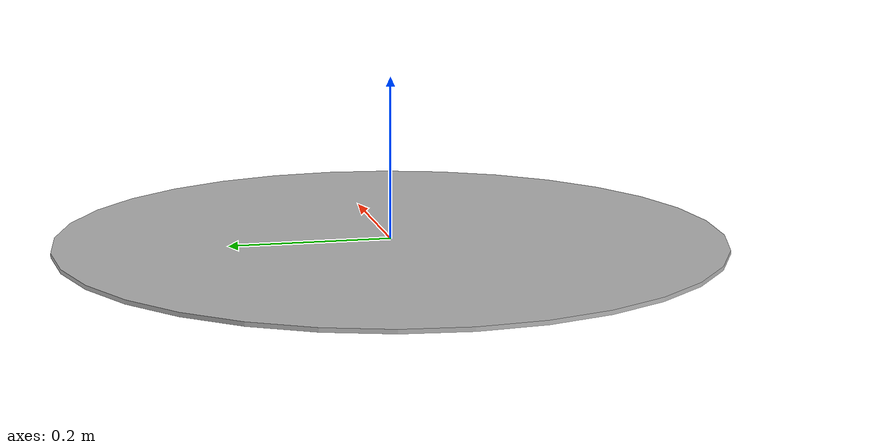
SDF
<?xml version='1.0'?>
<sdf version='1.5'>
  <model name='blueLandingPad'>
    <static>true</static>
    <link name="link">
      <visual name="visual">
        <geometry>
          <mesh>
            <uri>model://blueLandingPad/blueLandingPad.dae</uri>
            <scale>0.505834 0.505834 0.505834</scale>
          </mesh>
        </geometry>
      </visual>

    </link>
  </model>
</sdf>
